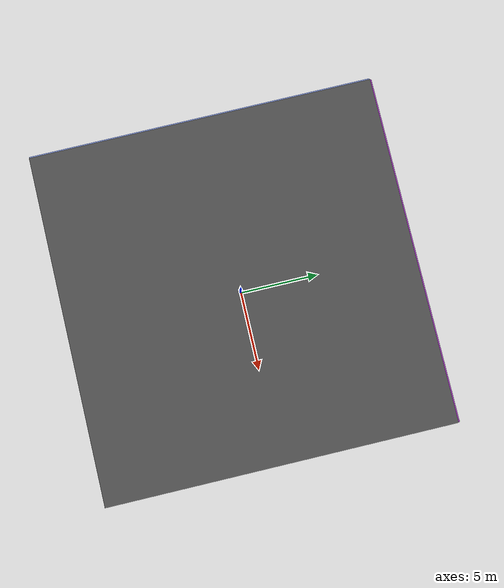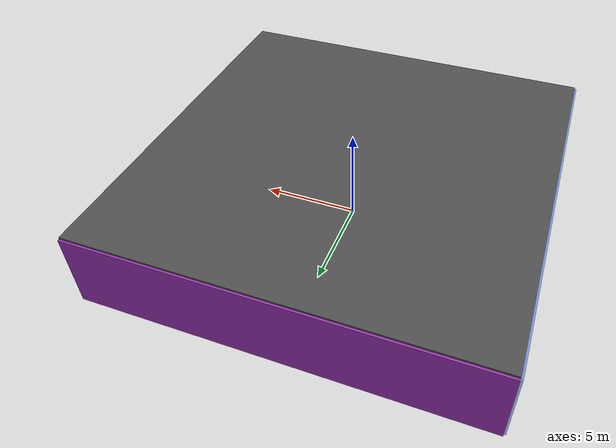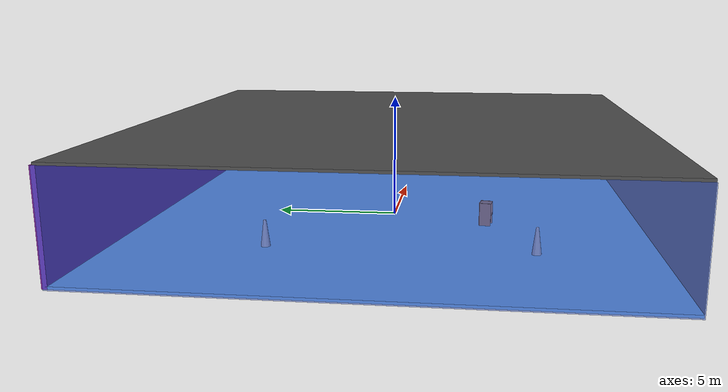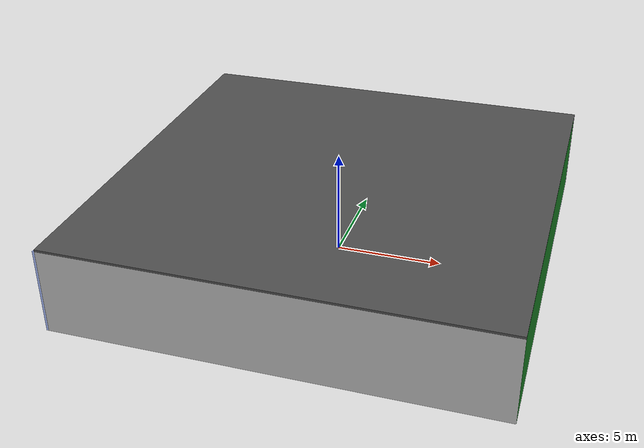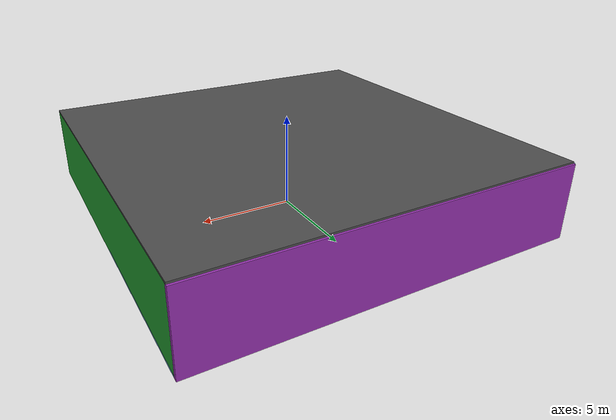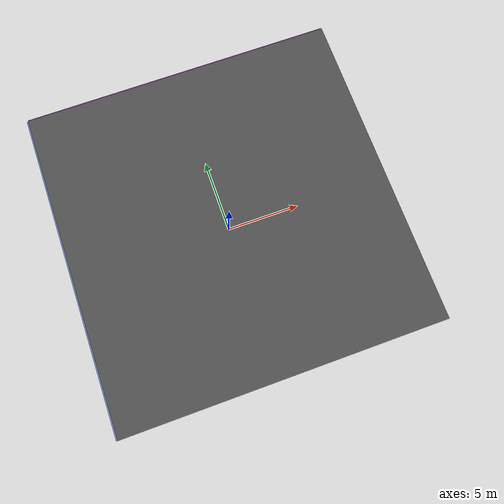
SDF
<sdf version="1.4">
 <world name="default">
  <physics type="ode">
   <max_step_size>0.001</max_step_size>
   <real_time_factor>1</real_time_factor>
   <real_time_update_rate>1000</real_time_update_rate>
   <gravity>0 0 -9.8</gravity>
  </physics>
  <scene><ambient>0.4 0.4 0.4 1</ambient><background>0.7 0.7 0.7 1</background><shadows>1</shadows></scene>
  <model name="Surrounding">
   <static>1</static>
   <link name="Ceiling">
    <collision name="Ceiling_Collision"><geometry><box><size>20 20 0.1</size></box></geometry></collision>
    <visual name="Ceiling_Visual">
     <geometry><box><size>20 20 0.1</size></box></geometry>
     <material>
      <script><uri>file://media/materials/scripts/gazebo.material</uri><name>Gazebo/Road</name></script>
     </material>
    </visual>
    <pose>0 0 4.05 0 0 0</pose>
   </link>
   <link name="Wall_South">
    <collision name="Wall_South_Collision">
     <geometry><box><size>20 0 4</size></box></geometry>
     <pose>0 0 2 0 -0 0</pose>
    </collision>
    <visual name="Wall_South_Visual">
     <pose>0 0 2 0 -0 0</pose>
     <geometry><box><size>20 0 4</size></box></geometry>
     <material>
      <script><uri>file://media/materials/scripts/gazebo.material</uri><name>Gazebo/CloudySky</name></script>
     </material>
    </visual>
    <velocity_decay><linear>0</linear><angular>0</angular></velocity_decay>
    <pose>0 -10 0 0 -0 0</pose>
   </link>
   <link name="Wall_East">
    <collision name="Wall_21_Collision">
     <geometry><box><size>20 0 4</size></box></geometry>
     <pose>0 0 2 0 -0 0</pose>
    </collision>
    <visual name="Wall_21_Visual">
     <pose>0 0 2 0 -0 0</pose>
     <geometry><box><size>20 0 4</size></box></geometry>
     <material>
      <script><uri>file://media/materials/scripts/gazebo.material</uri><name>Gazebo/GreenGlow</name></script>
     </material>
    </visual>
    <velocity_decay><linear>0</linear><angular>0</angular></velocity_decay>
    <pose>10 0 0 0 -0 1.5708</pose>
   </link>
   <link name="Wall_North">
    <collision name="Wall_22_Collision">
     <geometry><box><size>20 0.2 4</size></box></geometry>
     <pose>0 0 2 0 -0 0</pose>
    </collision>
    <visual name="Wall_22_Visual">
     <pose>0 0 2 0 -0 0</pose>
     <geometry><box><size>20 0.2 4</size></box></geometry>
     <material>
      <script><uri>file://media/materials/scripts/gazebo.material</uri><name>Gazebo/Purple</name></script>
     </material>
    </visual>
    <velocity_decay><linear>0</linear><angular>0</angular></velocity_decay>
    <pose>0 10 0 0 -0 0</pose>
   </link>
   <link name="Wall_West">
    <collision name="Wall_23_Collision">
     <geometry><box><size>20 0.2 4</size></box></geometry>
     <pose>0 0 2 0 -0 0</pose>
    </collision>
    <visual name="Wall_23_Visual">
     <pose>0 0 2 0 -0 0</pose>
     <geometry><box><size>20 0.2 4</size></box></geometry>
     <material>
      <script><uri>file://media/materials/scripts/gazebo.material</uri><name>Gazebo/BlueTransparent</name></script>
     </material>
    </visual>
    <velocity_decay><linear>0</linear><angular>0</angular></velocity_decay>
    <pose>-10 0 0 0 0 -1.5708</pose>
   </link>
   <link name="Ground_link">
    <collision name="collision">
     <pose>0 0 .05 0 -0 0</pose>
     <geometry><box><size>20 20 0.1</size></box></geometry>
    </collision>
    <visual name="visual">
     <pose>0 0 .05 0 -0 0</pose>
     <geometry><box><size>20 20 0.1</size></box></geometry>
     <material>
      <script><uri>file://media/materials/scripts/gazebo.material</uri><name>Gazebo/SkyBlue</name></script>
     </material>
    </visual>
   </link>
   <static>1</static>
  </model>
  <spherical_coordinates>
   <surface_model>EARTH_WGS84</surface_model>
   <latitude_deg>0</latitude_deg>
   <longitude_deg>0</longitude_deg>
   <elevation>0</elevation>
   <heading_deg>0</heading_deg>
  </spherical_coordinates>
  <light name="lightball_0" type="diffuse">
   <diffuse>0.8 0.8 0.8 1</diffuse>
   <specular>0.2 0.2 0.2 1</specular>
   <attenuation>
    <range>100</range>
    <constant>0.7</constant>
    <linear>0.01</linear>
    <quadratic>0.001</quadratic>
   </attenuation>
   <direction>-0.5 0.1 -0.9</direction>
   <pose>-6.63739378739 0.819943227187 1.05689153345 0 0 0</pose>
  </light>
  <light name="lightball_1" type="diffuse">
   <diffuse>0.8 0.8 0.8 1</diffuse>
   <specular>0.2 0.2 0.2 1</specular>
   <attenuation>
    <range>100</range>
    <constant>0.7</constant>
    <linear>0.01</linear>
    <quadratic>0.001</quadratic>
   </attenuation>
   <direction>-0.5 0.1 -0.9</direction>
   <pose>8.97302809305 -3.09150235608 3.75650407948 0 0 0</pose>
  </light>
  <light name="lightball_2" type="diffuse">
   <diffuse>0.8 0.8 0.8 1</diffuse>
   <specular>0.2 0.2 0.2 1</specular>
   <attenuation>
    <range>100</range>
    <constant>0.7</constant>
    <linear>0.01</linear>
    <quadratic>0.001</quadratic>
   </attenuation>
   <direction>-0.5 0.1 -0.9</direction>
   <pose>4.24845097785 -0.782939185883 3.76080913159 0 0 0</pose>
  </light>
  <light name="lightball_3" type="diffuse">
   <diffuse>0.8 0.8 0.8 1</diffuse>
   <specular>0.2 0.2 0.2 1</specular>
   <attenuation>
    <range>100</range>
    <constant>0.7</constant>
    <linear>0.01</linear>
    <quadratic>0.001</quadratic>
   </attenuation>
   <direction>-0.5 0.1 -0.9</direction>
   <pose>-5.04023326418 -3.89123978369 1.73555259744 0 0 0</pose>
  </light>
  <light name="lightball_4" type="diffuse">
   <diffuse>0.8 0.8 0.8 1</diffuse>
   <specular>0.2 0.2 0.2 1</specular>
   <attenuation>
    <range>100</range>
    <constant>0.7</constant>
    <linear>0.01</linear>
    <quadratic>0.001</quadratic>
   </attenuation>
   <direction>-0.5 0.1 -0.9</direction>
   <pose>-1.47651549103 -2.83327661512 3.59070118126 0 0 0</pose>
  </light>
  <light name="lightball_5" type="diffuse">
   <diffuse>0.8 0.8 0.8 1</diffuse>
   <specular>0.2 0.2 0.2 1</specular>
   <attenuation>
    <range>100</range>
    <constant>0.7</constant>
    <linear>0.01</linear>
    <quadratic>0.001</quadratic>
   </attenuation>
   <direction>-0.5 0.1 -0.9</direction>
   <pose>-9.27538839945 -6.09634108242 1.48423319036 0 0 0</pose>
  </light>
  <light name="lightball_6" type="diffuse">
   <diffuse>0.8 0.8 0.8 1</diffuse>
   <specular>0.2 0.2 0.2 1</specular>
   <attenuation>
    <range>100</range>
    <constant>0.7</constant>
    <linear>0.01</linear>
    <quadratic>0.001</quadratic>
   </attenuation>
   <direction>-0.5 0.1 -0.9</direction>
   <pose>9.44369733386 1.93598408291 2.4489119591 0 0 0</pose>
  </light>
  <light name="lightball_7" type="diffuse">
   <diffuse>0.8 0.8 0.8 1</diffuse>
   <specular>0.2 0.2 0.2 1</specular>
   <attenuation>
    <range>100</range>
    <constant>0.7</constant>
    <linear>0.01</linear>
    <quadratic>0.001</quadratic>
   </attenuation>
   <direction>-0.5 0.1 -0.9</direction>
   <pose>2.03394357743 6.39237636884 1.09619776148 0 0 0</pose>
  </light>
  <light name="lightball_8" type="diffuse">
   <diffuse>0.8 0.8 0.8 1</diffuse>
   <specular>0.2 0.2 0.2 1</specular>
   <attenuation>
    <range>100</range>
    <constant>0.7</constant>
    <linear>0.01</linear>
    <quadratic>0.001</quadratic>
   </attenuation>
   <direction>-0.5 0.1 -0.9</direction>
   <pose>8.12903513385 8.91137904791 2.69288552494 0 0 0</pose>
  </light>
  <light name="lightball_9" type="diffuse">
   <diffuse>0.8 0.8 0.8 1</diffuse>
   <specular>0.2 0.2 0.2 1</specular>
   <attenuation>
    <range>100</range>
    <constant>0.7</constant>
    <linear>0.01</linear>
    <quadratic>0.001</quadratic>
   </attenuation>
   <direction>-0.5 0.1 -0.9</direction>
   <pose>1.72763751677 8.74173354966 2.34314973237 0 0 0</pose>
  </light>
  <light name="lightball_10" type="diffuse">
   <diffuse>0.8 0.8 0.8 1</diffuse>
   <specular>0.2 0.2 0.2 1</specular>
   <attenuation>
    <range>100</range>
    <constant>0.7</constant>
    <linear>0.01</linear>
    <quadratic>0.001</quadratic>
   </attenuation>
   <direction>-0.5 0.1 -0.9</direction>
   <pose>-3.62501842807 -6.28341771482 0.808598453239 0 0 0</pose>
  </light>
  <light name="lightball_11" type="diffuse">
   <diffuse>0.8 0.8 0.8 1</diffuse>
   <specular>0.2 0.2 0.2 1</specular>
   <attenuation>
    <range>100</range>
    <constant>0.7</constant>
    <linear>0.01</linear>
    <quadratic>0.001</quadratic>
   </attenuation>
   <direction>-0.5 0.1 -0.9</direction>
   <pose>-3.04811275362 6.98282483512 0.750969242984 0 0 0</pose>
  </light>
  <include>
   <uri>model://construction_cone</uri>
   <pose>-5.10209936661 -5.62166892379 0 0 0 1.18898395812</pose>
  </include>
  <include>
   <uri>model://construction_cone</uri>
   <pose>-5.23651629069 4.21005855031 0 0 0 1.48311707901</pose>
  </include>
  <include><uri>model://cabinet</uri><pose>-1.54019123461 -3.85360779825 0 0 0 1.39578403049</pose></include>
 </world>
</sdf>

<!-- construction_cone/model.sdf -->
<sdf version="1.5">
  <model name="Construction Cone">
    <link name="link">
      <collision name="collision">
        <geometry>
          <mesh>
            <scale>10 10 10</scale>
            <uri>file://isr-testbed/construction_cone/meshes/construction_cone.dae</uri>
          </mesh>
        </geometry>
      </collision>
      <visual name="visual">
        <geometry>
          <mesh>
            <scale>10 10 10</scale>
            <uri>file://isr-testbed/construction_cone/meshes/construction_cone.dae</uri>
          </mesh>
        </geometry>
      </visual>
    </link>
  </model>
</sdf>

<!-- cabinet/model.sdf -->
<sdf version="1.5">
  <model name="cabinet">
    <static>true</static>
    <link name="cabinet_bottom_plate">
      <inertial>
        <pose>0 0 -1 0 0 0</pose>
        <inertia>
          <ixx>2.050000</ixx>
          <ixy>0</ixy>
          <ixz>0</ixz>
          <iyy>2.050000</iyy>
          <iyz>0</iyz>
          <izz>2.050000</izz>
        </inertia>
        <mass>25.000000</mass>
      </inertial>
      <collision name="cabinet_bottom_plate_geom">
        <pose>0 0 0.010000 0 0 0</pose>
        <geometry>
          <box>
            <size>0.450000 0.450000 0.020000</size>
          </box>
        </geometry>
      </collision>
      <visual name="cabinet_bottom_plate_geom_visual">
        <pose>0 0 0.010000 0 0 0</pose>
        <geometry>
          <box>
            <size>0.450000 0.450000 0.020000</size>
          </box>
        </geometry>
        <material>
          <script>
            <uri>model://media/materials/scripts/gazebo.material</uri>
            <name>Gazebo/Wood</name>
          </script>
        </material>
      </visual>
      <collision name="cabinet_bottom_plate_geom_cabinet_back_plate">
        <pose>0.235000 0 0.510000 0 0 0</pose>
        <geometry>
          <box>
            <size>0.020000 0.450000 1.020000</size>
          </box>
        </geometry>
      </collision>
      <visual name="cabinet_bottom_plate_geom_cabinet_back_plate_visual">
        <pose>0.235000 0 0.510000 0 0 0</pose>
        <geometry>
          <box>
            <size>0.020000 0.450000 1.020000</size>
          </box>
        </geometry>
        <material>
          <script>
            <uri>model://media/materials/scripts/gazebo.material</uri>
            <name>Gazebo/Wood</name>
          </script>
        </material>
      </visual>
      <collision name="cabinet_bottom_plate_geom_cabinet_left_plate">
        <pose>0 0.235000 0.510000 0 0 0</pose>
        <geometry>
          <box>
            <size>0.450000 0.020000 1.020000</size>
          </box>
        </geometry>
      </collision>
      <visual name="cabinet_bottom_plate_geom_cabinet_left_plate_visual">
        <pose>0 0.235000 0.510000 0 0 0</pose>
        <geometry>
          <box>
            <size>0.450000 0.020000 1.020000</size>
          </box>
        </geometry>
        <material>
          <script>
            <uri>model://media/materials/scripts/gazebo.material</uri>
            <name>Gazebo/Wood</name>
          </script>
        </material>
      </visual>
      <collision name="cabinet_bottom_plate_geom_cabinet_middle_plate">
        <pose>0 0 0.510000 0 0 0</pose>
        <geometry>
          <box>
            <size>0.450000 0.450000 0.020000</size>
          </box>
        </geometry>
      </collision>
      <visual name="cabinet_bottom_plate_geom_cabinet_middle_plate_visual">
        <pose>0 0 0.510000 0 0 0</pose>
        <geometry>
          <box>
            <size>0.450000 0.450000 0.020000</size>
          </box>
        </geometry>
        <material>
          <script>
            <uri>model://media/materials/scripts/gazebo.material</uri>
            <name>Gazebo/Wood</name>
          </script>
        </material>
      </visual>
      <collision name="cabinet_bottom_plate_geom_cabinet_right_plate">
        <pose>0 -0.235000 0.510000 0 0 0</pose>
        <geometry>
          <box>
            <size>0.450000 0.020000 1.020000</size>
          </box>
        </geometry>
      </collision>
      <visual name="cabinet_bottom_plate_geom_cabinet_right_plate_visual">
        <pose>0 -0.235000 0.510000 0 0 0</pose>
        <geometry>
          <box>
            <size>0.450000 0.020000 1.020000</size>
          </box>
        </geometry>
        <material>
          <script>
            <uri>model://media/materials/scripts/gazebo.material</uri>
            <name>Gazebo/Wood</name>
          </script>
        </material>
      </visual>
      <collision name="cabinet_bottom_plate_geom_cabinet_top_plate">
        <pose>0 0 1.010000 0 0 0</pose>
        <geometry>
          <box>
            <size>0.450000 0.450000 0.020000</size>
          </box>
        </geometry>
      </collision>
      <visual name="cabinet_bottom_plate_geom_cabinet_top_plate_visual">
        <pose>0 0 1.010000 0 0 0</pose>
        <geometry>
          <box>
            <size>0.450000 0.450000 0.020000</size>
          </box>
        </geometry>
        <material>
          <script>
            <uri>model://media/materials/scripts/gazebo.material</uri>
            <name>Gazebo/Wood</name>
          </script>
        </material>
      </visual>
    </link>
  </model>
</sdf>
